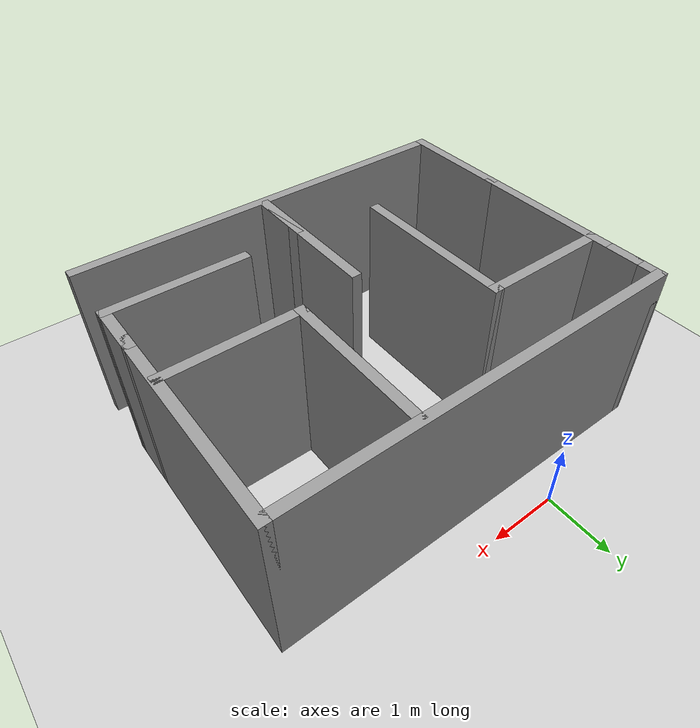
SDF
<sdf version="1.7">
 <world name="default">
  <light name="sun" type="directional">
   <pose>0 0 10 0 -0 0</pose>
   <diffuse>0.8 0.8 0.8 1</diffuse>
   <specular>0.2 0.2 0.2 1</specular>
   <attenuation>
    <range>1000</range>
    <constant>0.9</constant>
    <linear>0.01</linear>
    <quadratic>0.001</quadratic>
   </attenuation>
   <direction>-0.5 0.1 -0.9</direction>
   <spot><inner_angle>0</inner_angle><outer_angle>0</outer_angle><falloff>0</falloff></spot>
  </light>
  <model name="ground_plane">
   <static>1</static>
   <link name="link">
    <collision name="collision">
     <geometry><plane><normal>0 0 1</normal><size>100 100</size></plane></geometry>
     <surface>
      <contact><collide_bitmask>65535</collide_bitmask></contact>
      <friction><ode><mu>100</mu><mu2>50</mu2></ode></friction>
     </surface>
    </collision>
    <visual name="visual">
     <cast_shadows>0</cast_shadows>
     <geometry><plane><normal>0 0 1</normal><size>100 100</size></plane></geometry>
     <material>
      <script><uri>file://media/materials/scripts/gazebo.material</uri><name>Gazebo/Grey</name></script>
     </material>
    </visual>
   </link>
  </model>
  <gravity>0 0 -9.8</gravity>
  <magnetic_field>6e-06 2.3e-05 -4.2e-05</magnetic_field>
  <atmosphere type="adiabatic"/>
  <physics type="ode">
   <max_step_size>0.001</max_step_size>
   <real_time_factor>1</real_time_factor>
   <real_time_update_rate>1000</real_time_update_rate>
  </physics>
  <scene><ambient>0.4 0.4 0.4 1</ambient><background>0.7 0.7 0.7 1</background><shadows>1</shadows></scene>
  <audio><device>default</device></audio>
  <spherical_coordinates>
   <surface_model>EARTH_WGS84</surface_model>
   <latitude_deg>0</latitude_deg>
   <longitude_deg>0</longitude_deg>
   <elevation>0</elevation>
   <heading_deg>0</heading_deg>
  </spherical_coordinates>
  <model name="obstacle">
   <pose>0.90519 -2.5825 0 0 -0 0</pose>
   <link name="Wall_0">
    <collision name="Wall_0_Collision">
     <geometry><box><size>0.5 0.15 2.5</size></box></geometry>
     <pose>0 0 1.25 0 -0 0</pose>
    </collision>
    <visual name="Wall_0_Visual">
     <pose>0 0 1.25 0 -0 0</pose>
     <geometry><box><size>0.5 0.15 2.5</size></box></geometry>
     <material>
      <script><uri>file://media/materials/scripts/gazebo.material</uri><name>Gazebo/Grey</name></script>
      <ambient>1 1 1 1</ambient>
     </material>
     <meta><layer>0</layer></meta>
    </visual>
    <pose>-2.92519 1.1675 0 0 -0 1.5708</pose>
   </link>
   <link name="Wall_1">
    <collision name="Wall_1_Collision">
     <geometry><box><size>0.5 0.15 2.5</size></box></geometry>
     <pose>0 0 1.25 0 -0 0</pose>
    </collision>
    <visual name="Wall_1_Visual">
     <pose>0 0 1.25 0 -0 0</pose>
     <geometry><box><size>0.5 0.15 2.5</size></box></geometry>
     <material>
      <script><uri>file://media/materials/scripts/gazebo.material</uri><name>Gazebo/Grey</name></script>
      <ambient>1 1 1 1</ambient>
     </material>
     <meta><layer>0</layer></meta>
    </visual>
    <pose>-2.92519 1.5175 0 0 -0 1.5708</pose>
   </link>
   <link name="Wall_16">
    <collision name="Wall_16_Collision">
     <geometry><box><size>1.75 0.15 2.5</size></box></geometry>
     <pose>0 0 1.25 0 -0 0</pose>
    </collision>
    <visual name="Wall_16_Visual">
     <pose>0 0 1.25 0 -0 0</pose>
     <geometry><box><size>1.75 0.15 2.5</size></box></geometry>
     <material>
      <script><uri>file://media/materials/scripts/gazebo.material</uri><name>Gazebo/Grey</name></script>
      <ambient>1 1 1 1</ambient>
     </material>
     <meta><layer>0</layer></meta>
    </visual>
    <pose>-2.92519 -1.7075 0 0 -0 -1.5708</pose>
   </link>
   <link name="Wall_17">
    <collision name="Wall_17_Collision">
     <geometry><box><size>6 0.15 2.5</size></box></geometry>
     <pose>0 0 1.25 0 -0 0</pose>
    </collision>
    <visual name="Wall_17_Visual">
     <pose>0 0 1.25 0 -0 0</pose>
     <geometry><box><size>6 0.15 2.5</size></box></geometry>
     <material>
      <script><uri>file://media/materials/scripts/gazebo.material</uri><name>Gazebo/Grey</name></script>
      <ambient>1 1 1 1</ambient>
     </material>
     <meta><layer>0</layer></meta>
    </visual>
    <pose>-0.00019 -2.5075 0 0 -0 0</pose>
   </link>
   <link name="Wall_19">
    <collision name="Wall_19_Collision">
     <geometry><box><size>0.75 0.15 2.5</size></box></geometry>
     <pose>0 0 1.25 0 -0 0</pose>
    </collision>
    <visual name="Wall_19_Visual">
     <pose>0 0 1.25 0 -0 0</pose>
     <geometry><box><size>0.75 0.15 2.5</size></box></geometry>
     <material>
      <script><uri>file://media/materials/scripts/gazebo.material</uri><name>Gazebo/Grey</name></script>
      <ambient>1 1 1 1</ambient>
     </material>
     <meta><layer>0</layer></meta>
    </visual>
    <pose>2.92481 -1.2075 0 0 -0 -1.5708</pose>
   </link>
   <link name="Wall_2">
    <collision name="Wall_2_Collision">
     <geometry><box><size>2.75 0.15 2.5</size></box></geometry>
     <pose>0 0 1.25 0 -0 0</pose>
    </collision>
    <visual name="Wall_2_Visual">
     <pose>0 0 1.25 0 -0 0</pose>
     <geometry><box><size>2.75 0.15 2.5</size></box></geometry>
     <material>
      <script><uri>file://media/materials/scripts/gazebo.material</uri><name>Gazebo/Grey</name></script>
      <ambient>1 1 1 1</ambient>
     </material>
     <meta><layer>0</layer></meta>
    </visual>
    <pose>-2.92519 0.3925 0 0 -0 -1.5708</pose>
   </link>
   <link name="Wall_21">
    <collision name="Wall_21_Collision">
     <geometry><box><size>2.03677 0.15 2.5</size></box></geometry>
     <pose>0 0 1.25 0 -0 0</pose>
    </collision>
    <visual name="Wall_21_Visual">
     <pose>0 0 1.25 0 -0 0</pose>
     <geometry><box><size>2.03677 0.15 2.5</size></box></geometry>
     <material>
      <script><uri>file://media/materials/scripts/gazebo.material</uri><name>Gazebo/Grey</name></script>
      <ambient>1 1 1 1</ambient>
     </material>
     <meta><layer>0</layer></meta>
    </visual>
    <pose>1.98144 -1.5027 0 0 -0 -0.005091</pose>
   </link>
   <link name="Wall_23">
    <collision name="Wall_23_Collision">
     <geometry><box><size>1 0.15 2.5</size></box></geometry>
     <pose>0 0 1.25 0 -0 0</pose>
    </collision>
    <visual name="Wall_23_Visual">
     <pose>0 0 1.25 0 -0 0</pose>
     <geometry><box><size>1 0.15 2.5</size></box></geometry>
     <material>
      <script><uri>file://media/materials/scripts/gazebo.material</uri><name>Gazebo/Grey</name></script>
      <ambient>1 1 1 1</ambient>
     </material>
     <meta><layer>0</layer></meta>
    </visual>
    <pose>0.125542 -2.00224 0 0 -0 -1.5708</pose>
   </link>
   <link name="Wall_24">
    <collision name="Wall_24_Collision">
     <geometry><box><size>2.25 0.15 2.5</size></box></geometry>
     <pose>0 0 1.25 0 -0 0</pose>
    </collision>
    <visual name="Wall_24_Visual">
     <pose>0 0 1.25 0 -0 0</pose>
     <geometry><box><size>2.25 0.15 2.5</size></box></geometry>
     <material>
      <script><uri>file://media/materials/scripts/gazebo.material</uri><name>Gazebo/Grey</name></script>
      <ambient>1 1 1 1</ambient>
     </material>
     <meta><layer>0</layer></meta>
    </visual>
    <pose>0.125542 -1.37724 0 0 -0 1.5708</pose>
   </link>
   <link name="Wall_26">
    <collision name="Wall_26_Collision">
     <geometry><box><size>2.25 0.15 2.5</size></box></geometry>
     <pose>0 0 1.25 0 -0 0</pose>
    </collision>
    <visual name="Wall_26_Visual">
     <pose>0 0 1.25 0 -0 0</pose>
     <geometry><box><size>2.25 0.15 2.5</size></box></geometry>
     <material>
      <script><uri>file://media/materials/scripts/gazebo.material</uri><name>Gazebo/Grey</name></script>
      <ambient>1 1 1 1</ambient>
     </material>
     <meta><layer>0</layer></meta>
    </visual>
    <pose>1.05129 0.93028 0 0 -0 -1.5708</pose>
   </link>
   <link name="Wall_27">
    <collision name="Wall_27_Collision">
     <geometry><box><size>2 0.15 2.5</size></box></geometry>
     <pose>0 0 1.25 0 -0 0</pose>
    </collision>
    <visual name="Wall_27_Visual">
     <pose>0 0 1.25 0 -0 0</pose>
     <geometry><box><size>2 0.15 2.5</size></box></geometry>
     <material>
      <script><uri>file://media/materials/scripts/gazebo.material</uri><name>Gazebo/Grey</name></script>
      <ambient>1 1 1 1</ambient>
     </material>
     <meta><layer>0</layer></meta>
    </visual>
    <pose>1.97629 -0.11972 0 0 -0 0</pose>
   </link>
   <link name="Wall_30">
    <collision name="Wall_30_Collision">
     <geometry><box><size>2 0.15 2.5</size></box></geometry>
     <pose>0 0 1.25 0 -0 0</pose>
    </collision>
    <visual name="Wall_30_Visual">
     <pose>0 0 1.25 0 -0 0</pose>
     <geometry><box><size>2 0.15 2.5</size></box></geometry>
     <material>
      <script><uri>file://media/materials/scripts/gazebo.material</uri><name>Gazebo/Grey</name></script>
      <ambient>1 1 1 1</ambient>
     </material>
     <meta><layer>0</layer></meta>
    </visual>
    <pose>-2.00019 0.9925 0 0 -0 0</pose>
   </link>
   <link name="Wall_31">
    <collision name="Wall_31_Collision">
     <geometry><box><size>2.5 0.15 2.5</size></box></geometry>
     <pose>0 0 1.25 0 -0 0</pose>
    </collision>
    <visual name="Wall_31_Visual">
     <pose>0 0 1.25 0 -0 0</pose>
     <geometry><box><size>2.5 0.15 2.5</size></box></geometry>
     <material>
      <script><uri>file://media/materials/scripts/gazebo.material</uri><name>Gazebo/Grey</name></script>
      <ambient>1 1 1 1</ambient>
     </material>
     <meta><layer>0</layer></meta>
    </visual>
    <pose>-1.07519 -0.1825 0 0 -0 -1.5708</pose>
   </link>
   <link name="Wall_5">
    <collision name="Wall_5_Collision">
     <geometry><box><size>0.5 0.15 2.5</size></box></geometry>
     <pose>0 0 1.25 0 -0 0</pose>
    </collision>
    <visual name="Wall_5_Visual">
     <pose>0 0 1.25 0 -0 0</pose>
     <geometry><box><size>0.5 0.15 2.5</size></box></geometry>
     <material>
      <script><uri>file://media/materials/scripts/gazebo.material</uri><name>Gazebo/Grey</name></script>
      <ambient>1 1 1 1</ambient>
     </material>
     <meta><layer>0</layer></meta>
    </visual>
    <pose>-2.92519 1.8675 0 0 -0 1.5708</pose>
   </link>
   <link name="Wall_6">
    <collision name="Wall_6_Collision">
     <geometry><box><size>6 0.15 2.5</size></box></geometry>
     <pose>0 0 1.25 0 -0 0</pose>
    </collision>
    <visual name="Wall_6_Visual">
     <pose>0 0 1.25 0 -0 0</pose>
     <geometry><box><size>6 0.15 2.5</size></box></geometry>
     <material>
      <script><uri>file://media/materials/scripts/gazebo.material</uri><name>Gazebo/Grey</name></script>
      <ambient>1 1 1 1</ambient>
     </material>
     <meta><layer>0</layer></meta>
    </visual>
    <pose>-0.00019 2.0425 0 0 -0 0</pose>
   </link>
   <link name="Wall_7">
    <collision name="Wall_7_Collision">
     <geometry><box><size>3 0.15 2.5</size></box></geometry>
     <pose>0 0 1.25 0 -0 0</pose>
    </collision>
    <visual name="Wall_7_Visual">
     <pose>0 0 1.25 0 -0 0</pose>
     <geometry><box><size>3 0.15 2.5</size></box></geometry>
     <material>
      <script><uri>file://media/materials/scripts/gazebo.material</uri><name>Gazebo/Grey</name></script>
      <ambient>1 1 1 1</ambient>
     </material>
     <meta><layer>0</layer></meta>
    </visual>
    <pose>2.92481 0.6175 0 0 -0 -1.5708</pose>
   </link>
   <link name="Wall_8">
    <collision name="Wall_8_Collision">
     <geometry><box><size>0.25 0.15 2.5</size></box></geometry>
     <pose>0 0 1.25 0 -0 0</pose>
    </collision>
    <visual name="Wall_8_Visual">
     <pose>0 0 1.25 0 -0 0</pose>
     <geometry><box><size>0.25 0.15 2.5</size></box></geometry>
     <material>
      <script><uri>file://media/materials/scripts/gazebo.material</uri><name>Gazebo/Grey</name></script>
      <ambient>1 1 1 1</ambient>
     </material>
     <meta><layer>0</layer></meta>
    </visual>
    <pose>2.92481 -0.8575 0 0 -0 -1.5708</pose>
   </link>
   <link name="Wall_9">
    <collision name="Wall_9_Collision">
     <geometry><box><size>0.25 0.15 2.5</size></box></geometry>
     <pose>0 0 1.25 0 -0 0</pose>
    </collision>
    <visual name="Wall_9_Visual">
     <pose>0 0 1.25 0 -0 0</pose>
     <geometry><box><size>0.25 0.15 2.5</size></box></geometry>
     <material>
      <script><uri>file://media/materials/scripts/gazebo.material</uri><name>Gazebo/Grey</name></script>
      <ambient>1 1 1 1</ambient>
     </material>
     <meta><layer>0</layer></meta>
    </visual>
    <pose>2.92481 -0.8575 0 0 -0 1.5708</pose>
   </link>
   <static>1</static>
  </model>
 </world>
</sdf>
